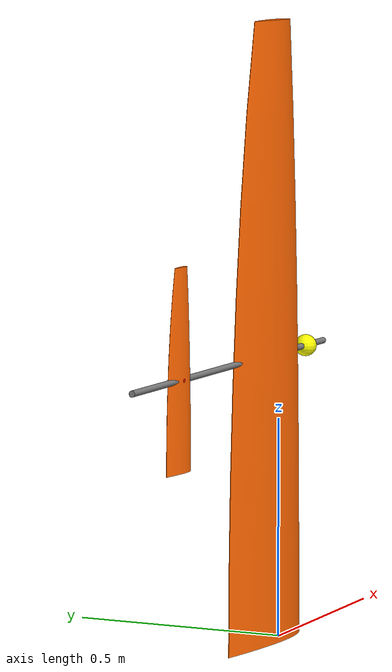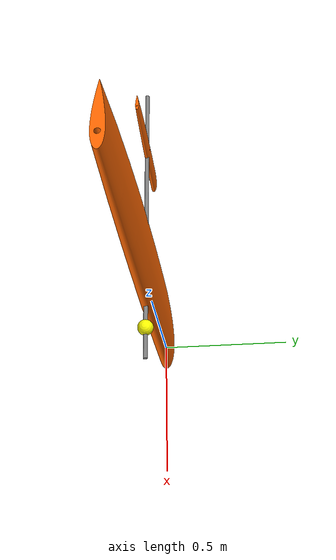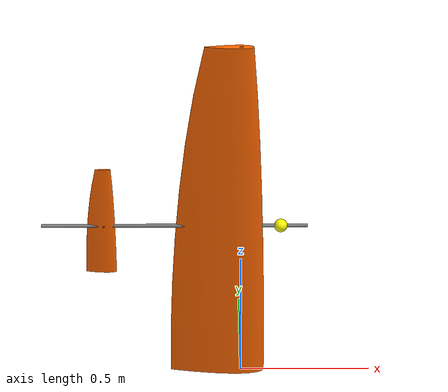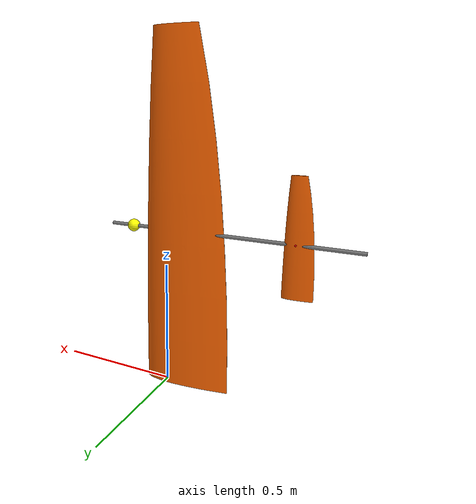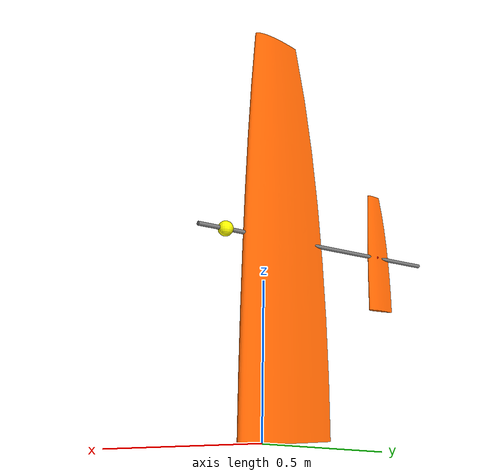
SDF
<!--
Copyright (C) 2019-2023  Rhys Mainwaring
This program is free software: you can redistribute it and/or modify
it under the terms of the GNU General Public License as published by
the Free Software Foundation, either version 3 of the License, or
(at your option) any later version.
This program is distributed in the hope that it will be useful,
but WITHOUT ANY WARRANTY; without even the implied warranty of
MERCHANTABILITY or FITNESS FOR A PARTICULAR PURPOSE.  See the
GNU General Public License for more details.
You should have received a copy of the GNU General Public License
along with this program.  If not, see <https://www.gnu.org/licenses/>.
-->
<?xml version="1.0"?>
<sdf version="1.6">
  <model name="wing_sail_naca0018_1.4m_with_elevator">

    <!-- Plugins -->

    <!--
      Linear approximations to lift / drag coefficient curves for
      NACA 0018 airfoil.
      Foil stalls at approx. 14 degrees (lower in the linear approx.)
    -->
    <plugin name="gz::sim::systems::SailLiftDrag"
        filename="asv_sim2-sail-lift-drag-system">
      <a0>0.0</a0>
      <cla>6.2832</cla>
      <alpha_stall>0.1592</alpha_stall>
      <cla_stall>-0.7083</cla_stall>
      <cda>0.63662</cda>
      <area>0.4858</area>
      <fluid_density>1.2</fluid_density>
      <forward>1 0 0</forward>
      <upward>0 1 0</upward>
      <cp>-0.05 0.0 0.65</cp>
      <link_name>wing_sail_link</link_name>
      <radial_symmetry>true</radial_symmetry>
      <topic>lift_drag</topic>
    </plugin>

    <plugin name="gz::sim::systems::SailLiftDrag"
        filename="asv_sim2-sail-lift-drag-system">
      <a0>0.0</a0>
      <cla>6.2832</cla>
      <alpha_stall>0.1592</alpha_stall>
      <cla_stall>-0.7083</cla_stall>
      <cda>0.63662</cda>
      <area>0.04858</area>
      <fluid_density>1.2</fluid_density>
      <forward>1 0 0</forward>
      <upward>0 1 0</upward>
      <cp>-0.015 0.0 0.2</cp>
      <link_name>wing_sail_elevator_link</link_name>
      <radial_symmetry>true</radial_symmetry>
      <topic>lift_drag</topic>
    </plugin>

    <!-- Wing sail -->
    <link name="wing_sail_link">
      <inertial>
        <pose>-0.05 0.0 0.65 0 0 0</pose>
        <mass>2.0</mass>
        <inertia>
          <ixx>0.326733333</ixx>
          <ixy>0</ixy>
          <iyy>0.348266667</iyy>
          <iyz>0</iyz>
          <izz>0.021666667</izz>
        </inertia>
      </inertial>
      <collision name="wing_sail_collision">
        <pose>-0.09 0 0.7 0 0 0</pose>
        <geometry>
          <box>
            <size>0.35 0.07 1.4</size>
          </box>
        </geometry>
      </collision>
      <visual name="wing_sail_visual">
        <geometry>
          <mesh>
            <uri>model://wing_sail_naca0018_1.4m_with_elevator/meshes/wing_sail.stl</uri>
          </mesh>
        </geometry>
        <material>
          <ambient>1.0 0.4 0.0 0.9</ambient>
          <diffuse>1.0 0.4 0.0 0.9</diffuse>
          <specular>0.1 0.1 0.1 1.0</specular>
        </material>
      </visual>
      <visual name="elevator_spar_visual">
        <pose>-0.25 0 0.65 0 1.570796 0</pose>
        <geometry>
          <cylinder>
            <radius>0.007</radius>
            <length>1.000</length>
          </cylinder>
        </geometry>
        <material>
          <ambient>0.5 0.5 0.5 1.0</ambient>
          <diffuse>0.5 0.5 0.5 1.0</diffuse>
          <specular>0.1 0.1 0.1 1.0</specular>
        </material>
      </visual>
      <visual name="cp_visual">
        <pose>-0.05 0 0.65 0 0 0</pose>
        <geometry>
          <sphere>
            <radius>0.01</radius>
          </sphere>
        </geometry>
        <material>
          <ambient>1.0 0.0 0.0 1.0</ambient>
          <diffuse>1.0 0.0 0.0 1.0</diffuse>
          <specular>0.1 0.1 0.1 1.0</specular>
        </material>
      </visual>
    </link>

    <!-- Wing sail elevator -->
    <link name="wing_sail_elevator_link">
      <pose>-0.5 0 0.45 0 0 0</pose>
      <inertial>
        <pose>-0.015 0.0 0.2 1.570796 1.570796 0</pose>
        <mass>0.0632455</mass>
        <inertia>
          <ixx>6.75281E-05</ixx>
          <ixy>0</ixy>
          <iyy>0.001029888</iyy>
          <iyz>0</iyz>
          <izz>0.001096957</izz>
        </inertia>
      </inertial>
      <collision name="collision">
        <pose>-0.028 0 0.22 0 0 0</pose>
        <geometry>
          <box>
            <size>0.11 0.02 0.44</size>
          </box>
        </geometry>
      </collision>
      <visual name="wing_sail_elevator_visual">
        <geometry>
          <mesh>
            <uri>model://wing_sail_naca0018_1.4m_with_elevator/meshes/wing_sail_elevator.stl</uri>
          </mesh>
        </geometry>
        <material>
          <ambient>1.0 0.4 0.0 0.9</ambient>
          <diffuse>1.0 0.4 0.0 0.9</diffuse>
          <specular>0.1 0.1 0.1 0.9</specular>
        </material>
      </visual>
      <visual name="cp_visual">
        <pose>-0.015 0 0.2 0 0 0</pose>
        <geometry>
          <sphere>
            <radius>0.01</radius>
          </sphere>
        </geometry>
        <material>
          <ambient>1.0 0.0 0.0 1.0</ambient>
          <diffuse>1.0 0.0 0.0 1.0</diffuse>
          <specular>0.1 0.1 0.1 1.0</specular>
        </material>
      </visual>
    </link>

    <joint name="wing_sail_elevator_joint" type="revolute">
      <pose>0 0 0.2 0 0 0</pose>
      <child>wing_sail_elevator_link</child>
      <parent>wing_sail_link</parent>
      <axis>
        <xyz>0 0 1</xyz>
        <dynamics>
          <damping>0.01</damping>
        </dynamics>
        <limit>
          <lower>-1.570796327</lower>
          <upper>1.570796327</upper>
        </limit>
      </axis>
      <sensor name="force_torque_sensor" type="force_torque">
        <always_on>true</always_on>
        <update_rate>30</update_rate>
        <visualize>true</visualize>
      </sensor>
    </joint>

    <!-- Wing sail counterweight -->
    <link name="wing_sail_counterweight_link">
      <pose>0.15 0 0.65 0 0 0</pose>
      <inertial>
        <mass>0.1</mass>
        <inertia>
          <ixx>0.000025</ixx>
          <ixy>0</ixy>
          <iyy>0.000025</iyy>
          <iyz>0</iyz>
          <izz>0.000025</izz>
        </inertia>
      </inertial>
      <collision name="collision">
        <geometry>
          <sphere>
            <radius>0.025</radius>
          </sphere>
        </geometry>
      </collision>
      <visual name="visual">
        <geometry>
          <sphere>
            <radius>0.025</radius>
          </sphere>
        </geometry>
        <material>
          <ambient>1.0 1.0 0.0 1.0</ambient>
          <diffuse>1.0 1.0 0.0 1.0</diffuse>
          <specular>0.1 0.1 0.1 1.0</specular>
        </material>
      </visual>
    </link>

    <joint name="wing_sail_counterweight_joint" type="revolute">
      <child>wing_sail_counterweight_link</child>
      <parent>wing_sail_link</parent>
      <axis>
        <xyz>0 0 1</xyz>
        <dynamics>
          <damping>1.0</damping>
        </dynamics>
        <limit>
          <lower>0</lower>
          <upper>0</upper>
        </limit>
      </axis>
    </joint>

  </model>
</sdf>
